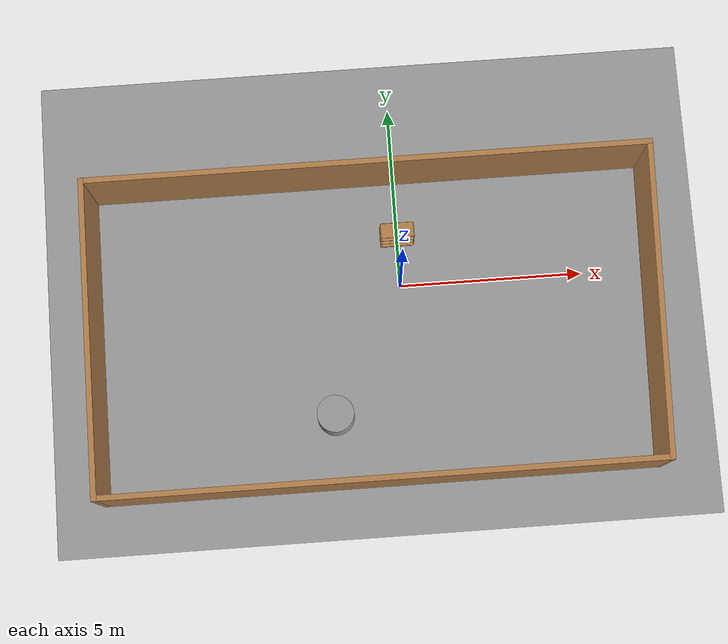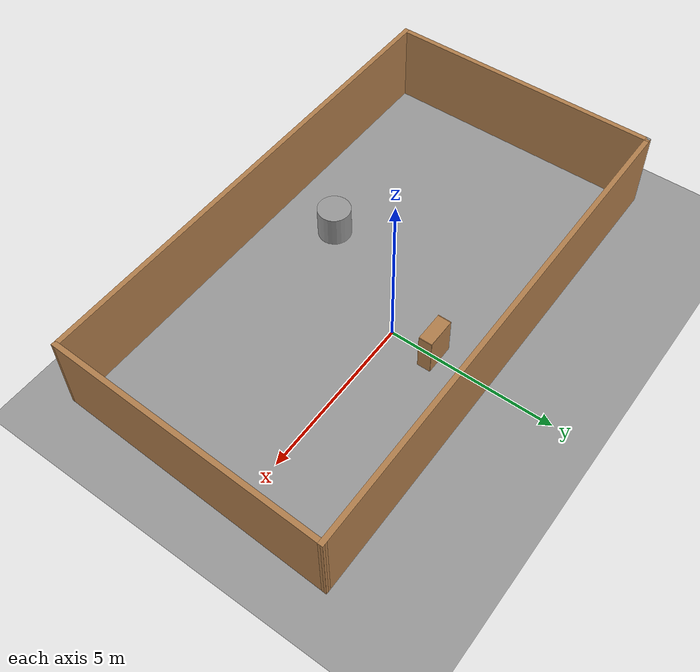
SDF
<sdf version="1.4">
 <world name="default">
  <light name="sun" type="directional">
   <pose>0 0 10 0 -0 0</pose>
   <diffuse>0.8 0.8 0.8 1</diffuse>
   <specular>0.2 0.2 0.2 1</specular>
   <attenuation>
    <range>1000</range>
    <constant>0.9</constant>
    <linear>0.01</linear>
    <quadratic>0.001</quadratic>
   </attenuation>
   <direction>0.5 0.1 -0.9</direction>
  </light>
  <scene><ambient>0.4 0.4 0.4 1</ambient><background>0.7 0.7 0.7 1</background><shadows>1</shadows></scene>
  <physics type="ode">
   <max_step_size>0.01</max_step_size>
   <real_time_factor>1</real_time_factor>
   <real_time_update_rate>100</real_time_update_rate>
   <gravity>0 0 -9.8</gravity>
  </physics>
  <model name="closed_world">
   <pose>-0.722453 -1.20181 0 0 -0 0</pose>
   <link name="Wall_10">
    <collision name="Wall_10_Collision">
     <geometry><box><size>0.15 0.15 2.5</size></box></geometry>
     <pose>0 0 1.25 0 -0 0</pose>
    </collision>
    <visual name="Wall_10_Visual">
     <pose>0 0 1.25 0 -0 0</pose>
     <geometry><box><size>0.15 0.15 2.5</size></box></geometry>
     <material>
      <script><uri>file://media/materials/scripts/gazebo.material</uri><name>Gazebo/Grey</name></script>
      <ambient>1 1 1 1</ambient>
     </material>
    </visual>
    <pose>-7.55676 4.17119 0 0 -0 0</pose>
   </link>
   <link name="Wall_11">
    <collision name="Wall_11_Collision">
     <geometry><box><size>0.15 0.15 2.5</size></box></geometry>
     <pose>0 0 1.25 0 -0 0</pose>
    </collision>
    <visual name="Wall_11_Visual">
     <pose>0 0 1.25 0 -0 0</pose>
     <geometry><box><size>0.15 0.15 2.5</size></box></geometry>
     <material>
      <script><uri>file://media/materials/scripts/gazebo.material</uri><name>Gazebo/Grey</name></script>
      <ambient>1 1 1 1</ambient>
     </material>
    </visual>
    <pose>-7.55676 4.17119 0 0 -0 0</pose>
   </link>
   <link name="Wall_5">
    <collision name="Wall_5_Collision">
     <geometry><box><size>15.25 0.15 2.5</size></box></geometry>
     <pose>0 0 1.25 0 -0 0</pose>
    </collision>
    <visual name="Wall_5_Visual">
     <pose>0 0 1.25 0 -0 0</pose>
     <geometry><box><size>15.25 0.15 2.5</size></box></geometry>
     <material>
      <script><uri>file://media/materials/scripts/gazebo.material</uri><name>Gazebo/Wood</name></script>
      <ambient>1 1 1 1</ambient>
     </material>
    </visual>
    <pose>0.004453 4.17881 0 0 -0 0</pose>
   </link>
   <link name="Wall_7">
    <collision name="Wall_7_Collision">
     <geometry><box><size>8.5117 0.15 2.5</size></box></geometry>
     <pose>0 0 1.25 0 -0 0</pose>
    </collision>
    <visual name="Wall_7_Visual">
     <pose>0 0 1.25 0 -0 0</pose>
     <geometry><box><size>8.5117 0.15 2.5</size></box></geometry>
     <material>
      <script><uri>file://media/materials/scripts/gazebo.material</uri><name>Gazebo/Wood</name></script>
      <ambient>1 1 1 1</ambient>
     </material>
    </visual>
    <pose>7.42385 0 0 0 0 -1.60204</pose>
   </link>
   <link name="Wall_8">
    <collision name="Wall_8_Collision">
     <geometry><box><size>15 0.15 2.5</size></box></geometry>
     <pose>0 0 1.25 0 -0 0</pose>
    </collision>
    <visual name="Wall_8_Visual">
     <pose>0 0 1.25 0 -0 0</pose>
     <geometry><box><size>15 0.15 2.5</size></box></geometry>
     <material>
      <script><uri>file://media/materials/scripts/gazebo.material</uri><name>Gazebo/Wood</name></script>
      <ambient>1 1 1 1</ambient>
     </material>
    </visual>
    <pose>-0.13176 -4.17881 0 0 -0 3.14159</pose>
   </link>
   <link name="Wall_9">
    <collision name="Wall_9_Collision">
     <geometry><box><size>8.5 0.15 2.5</size></box></geometry>
     <pose>0 0 1.25 0 -0 0</pose>
    </collision>
    <visual name="Wall_9_Visual">
     <pose>0 0 1.25 0 -0 0</pose>
     <geometry><box><size>8.5 0.15 2.5</size></box></geometry>
     <material>
      <script><uri>file://media/materials/scripts/gazebo.material</uri><name>Gazebo/Wood</name></script>
      <ambient>1 1 1 1</ambient>
     </material>
    </visual>
    <pose>-7.55676 -0.003812 0 0 -0 1.5708</pose>
   </link>
   <static>1</static>
  </model>
  <model name="bookshelf">
   <static>1</static>
   <link name="link">
    <inertial><mass>1</mass></inertial>
    <collision name="back">
     <pose>0 0.005 0.6 0 -0 0</pose>
     <geometry><box><size>0.9 0.01 1.2</size></box></geometry>
    </collision>
    <visual name="visual1">
     <pose>0 0.005 0.6 0 -0 0</pose>
     <geometry><box><size>0.9 0.01 1.2</size></box></geometry>
     <material>
      <script><uri>file://media/materials/scripts/gazebo.material</uri><name>Gazebo/Wood</name></script>
     </material>
    </visual>
    <collision name="left_side">
     <pose>0.45 -0.195 0.6 0 -0 0</pose>
     <geometry><box><size>0.02 0.4 1.2</size></box></geometry>
    </collision>
    <visual name="visual2">
     <pose>0.45 -0.195 0.6 0 -0 0</pose>
     <geometry><box><size>0.02 0.4 1.2</size></box></geometry>
     <material>
      <script><uri>file://media/materials/scripts/gazebo.material</uri><name>Gazebo/Wood</name></script>
     </material>
    </visual>
    <collision name="right_side">
     <pose>-0.45 -0.195 0.6 0 -0 0</pose>
     <geometry><box><size>0.02 0.4 1.2</size></box></geometry>
    </collision>
    <visual name="visual3">
     <pose>-0.45 -0.195 0.6 0 -0 0</pose>
     <geometry><box><size>0.02 0.4 1.2</size></box></geometry>
     <material>
      <script><uri>file://media/materials/scripts/gazebo.material</uri><name>Gazebo/Wood</name></script>
     </material>
    </visual>
    <collision name="bottom">
     <pose>0 -0.195 0.03 0 -0 0</pose>
     <geometry><box><size>0.88 0.4 0.06</size></box></geometry>
    </collision>
    <visual name="visual4">
     <pose>0 -0.195 0.03 0 -0 0</pose>
     <geometry><box><size>0.88 0.4 0.06</size></box></geometry>
     <material>
      <script><uri>file://media/materials/scripts/gazebo.material</uri><name>Gazebo/Wood</name></script>
     </material>
    </visual>
    <collision name="top">
     <pose>0 -0.195 1.19 0 -0 0</pose>
     <geometry><box><size>0.88 0.4 0.02</size></box></geometry>
    </collision>
    <visual name="visual5">
     <pose>0 -0.195 1.19 0 -0 0</pose>
     <geometry><box><size>0.88 0.4 0.02</size></box></geometry>
     <material>
      <script><uri>file://media/materials/scripts/gazebo.material</uri><name>Gazebo/Wood</name></script>
     </material>
    </visual>
    <collision name="low_shelf">
     <pose>0 -0.195 0.43 0 -0 0</pose>
     <geometry><box><size>0.88 0.4 0.02</size></box></geometry>
    </collision>
    <visual name="visual6">
     <pose>0 -0.195 0.43 0 -0 0</pose>
     <geometry><box><size>0.88 0.4 0.02</size></box></geometry>
     <material>
      <script><uri>file://media/materials/scripts/gazebo.material</uri><name>Gazebo/Wood</name></script>
     </material>
    </visual>
    <collision name="high_shelf">
     <pose>0 -0.195 0.8 0 -0 0</pose>
     <geometry><box><size>0.88 0.4 0.02</size></box></geometry>
    </collision>
    <visual name="visual7">
     <pose>0 -0.195 0.8 0 -0 0</pose>
     <geometry><box><size>0.88 0.4 0.02</size></box></geometry>
     <material>
      <script><uri>file://media/materials/scripts/gazebo.material</uri><name>Gazebo/Wood</name></script>
     </material>
    </visual>
    <velocity_decay><linear>0</linear><angular>0</angular></velocity_decay>
   </link>
   <pose>0 1.53026 0 0 -0 0</pose>
  </model>
  <model name="ground_plane_0">
   <static>1</static>
   <link name="link">
    <collision name="collision">
     <geometry><plane><normal>0 0 1</normal><size>100 100</size></plane></geometry>
     <surface><friction><ode><mu>100</mu><mu2>50</mu2></ode></friction></surface>
    </collision>
    <visual name="visual">
     <cast_shadows>0</cast_shadows>
     <geometry><plane><normal>0 0 1</normal><size>100 100</size></plane></geometry>
     <material>
      <script><uri>file://media/materials/scripts/gazebo.material</uri><name>Gazebo/Grey</name></script>
     </material>
    </visual>
    <velocity_decay><linear>0</linear><angular>0</angular></velocity_decay>
   </link>
   <pose>0.497681 0 0 0 -0 0</pose>
  </model>
  <model name="unit_cylinder_1">
   <pose>-2 -3.4888 0.5 0 -0 0</pose>
   <link name="link">
    <inertial>
     <mass>1</mass>
     <inertia><ixx>1</ixx><ixy>0</ixy><ixz>0</ixz><iyy>1</iyy><iyz>0</iyz><izz>1</izz></inertia>
    </inertial>
    <collision name="collision">
     <geometry><cylinder><radius>0.5</radius><length>1</length></cylinder></geometry>
    </collision>
    <visual name="visual">
     <geometry><cylinder><radius>0.5</radius><length>1</length></cylinder></geometry>
     <material>
      <script><uri>file://media/materials/scripts/gazebo.material</uri><name>Gazebo/Grey</name></script>
     </material>
    </visual>
    <velocity_decay><linear>0</linear><angular>0</angular></velocity_decay>
   </link>
   <static>0</static>
  </model>
 </world>
</sdf>
